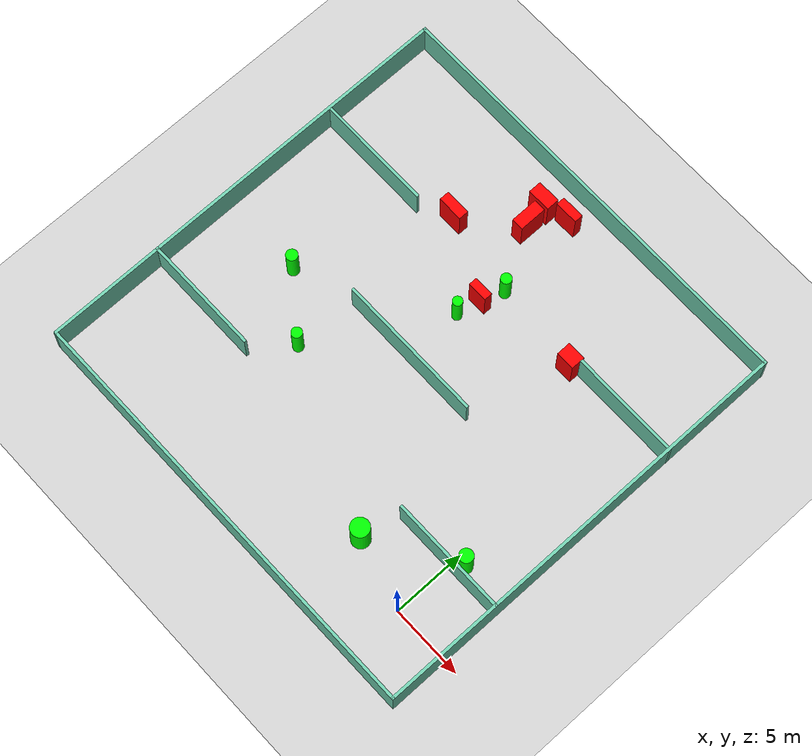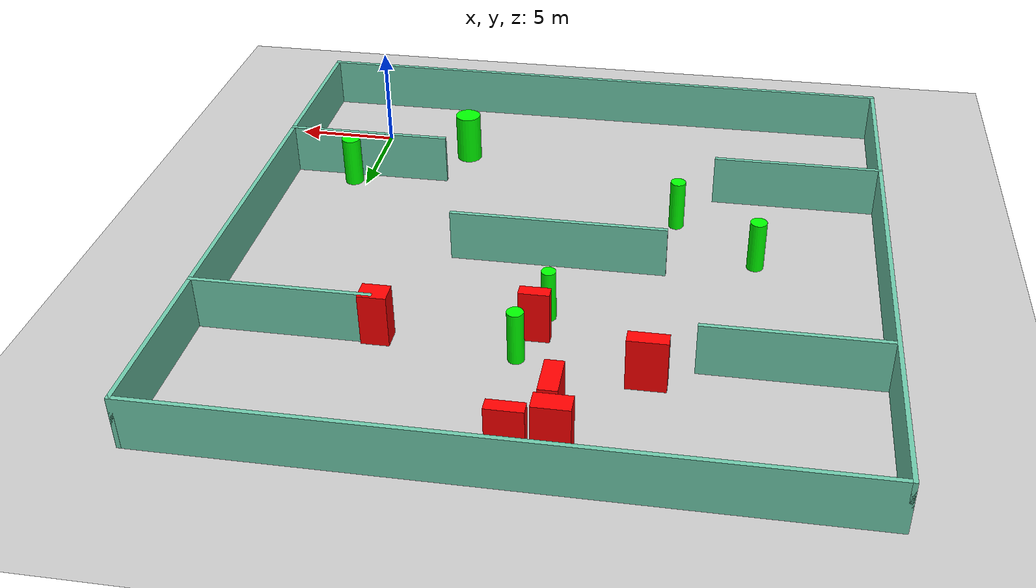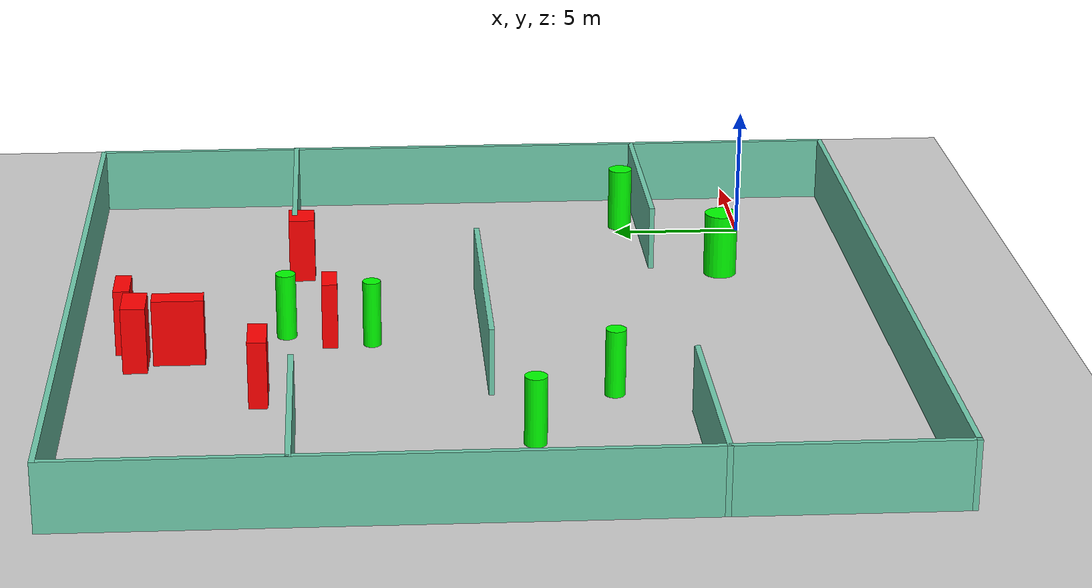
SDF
<sdf version="1.7">
 <world name="default">
  <light name="sun" type="directional">
   <pose>0 0 10 0 -0 0</pose>
   <diffuse>0.8 0.8 0.8 1</diffuse>
   <specular>0.2 0.2 0.2 1</specular>
   <attenuation>
    <range>1000</range>
    <constant>0.9</constant>
    <linear>0.01</linear>
    <quadratic>0.001</quadratic>
   </attenuation>
   <direction>-0.5 0.1 -0.9</direction>
   <spot><inner_angle>0</inner_angle><outer_angle>0</outer_angle><falloff>0</falloff></spot>
  </light>
  <model name="ground_plane">
   <static>1</static>
   <link name="link">
    <collision name="collision">
     <geometry><plane><normal>0 0 1</normal><size>100 100</size></plane></geometry>
     <surface>
      <contact><collide_bitmask>65535</collide_bitmask></contact>
      <friction><ode><mu>100</mu><mu2>50</mu2></ode></friction>
     </surface>
    </collision>
    <visual name="visual">
     <cast_shadows>0</cast_shadows>
     <geometry><plane><normal>0 0 1</normal><size>100 100</size></plane></geometry>
     <material>
      <script><uri>file://media/materials/scripts/gazebo.material</uri><name>Gazebo/Grey</name></script>
     </material>
    </visual>
   </link>
  </model>
  <gravity>0 0 -9.8</gravity>
  <magnetic_field>6e-06 2.3e-05 -4.2e-05</magnetic_field>
  <atmosphere type="adiabatic"/>
  <physics type="ode">
   <max_step_size>0.001</max_step_size>
   <real_time_factor>1</real_time_factor>
   <real_time_update_rate>1000</real_time_update_rate>
  </physics>
  <scene><ambient>0.4 0.4 0.4 1</ambient><background>0.7 0.7 0.7 1</background><shadows>1</shadows></scene>
  <spherical_coordinates>
   <surface_model>EARTH_WGS84</surface_model>
   <latitude_deg>0</latitude_deg>
   <longitude_deg>0</longitude_deg>
   <elevation>0</elevation>
   <heading_deg>0</heading_deg>
  </spherical_coordinates>
  <model name="my_base_walls">
   <link name="Wall_10">
    <collision name="Wall_10_Collision">
     <geometry><box><size>8.2 0.2 2.5</size></box></geometry>
     <pose>0 0 1.25 0 -0 0</pose>
    </collision>
    <visual name="Wall_10_Visual">
     <pose>0 0 1.25 0 -0 0</pose>
     <geometry><box><size>8.2 0.2 2.5</size></box></geometry>
     <material>
      <script><uri>file://media/materials/scripts/gazebo.material</uri><name>Gazebo/Grey</name></script>
      <ambient>0.435294 0.796078 0.67451 1</ambient>
     </material>
     <meta><layer>0</layer></meta>
    </visual>
    <pose>-11 -7 0 0 -0 0</pose>
   </link>
   <link name="Wall_12">
    <collision name="Wall_12_Collision">
     <geometry><box><size>8.2 0.2 2.5</size></box></geometry>
     <pose>0 0 1.25 0 -0 0</pose>
    </collision>
    <visual name="Wall_12_Visual">
     <pose>0 0 1.25 0 -0 0</pose>
     <geometry><box><size>8.2 0.2 2.5</size></box></geometry>
     <material>
      <script><uri>file://media/materials/scripts/gazebo.material</uri><name>Gazebo/Grey</name></script>
      <ambient>0.435294 0.796078 0.67451 1</ambient>
     </material>
     <meta><layer>0</layer></meta>
    </visual>
    <pose>-11 7 0 0 -0 0</pose>
   </link>
   <link name="Wall_14">
    <collision name="Wall_14_Collision">
     <geometry><box><size>8.2 0.2 2.5</size></box></geometry>
     <pose>0 0 1.25 0 -0 0</pose>
    </collision>
    <visual name="Wall_14_Visual">
     <pose>0 0 1.25 0 -0 0</pose>
     <geometry><box><size>8.2 0.2 2.5</size></box></geometry>
     <material>
      <script><uri>file://media/materials/scripts/gazebo.material</uri><name>Gazebo/Grey</name></script>
      <ambient>0.435294 0.796078 0.67451 1</ambient>
     </material>
     <meta><layer>0</layer></meta>
    </visual>
    <pose>11 7 0 0 -0 3.14159</pose>
   </link>
   <link name="Wall_16">
    <collision name="Wall_16_Collision">
     <geometry><box><size>10.2 0.2 2.5</size></box></geometry>
     <pose>0 0 1.25 0 -0 0</pose>
    </collision>
    <visual name="Wall_16_Visual">
     <pose>0 0 1.25 0 -0 0</pose>
     <geometry><box><size>10.2 0.2 2.5</size></box></geometry>
     <material>
      <script><uri>file://media/materials/scripts/gazebo.material</uri><name>Gazebo/Grey</name></script>
      <ambient>0.435294 0.796078 0.67451 1</ambient>
     </material>
     <meta><layer>0</layer></meta>
    </visual>
    <pose>0 0 0 0 -0 3.14159</pose>
   </link>
   <link name="Wall_2">
    <collision name="Wall_2_Collision">
     <geometry><box><size>30.2 0.2 2.5</size></box></geometry>
     <pose>0 0 1.25 0 -0 0</pose>
    </collision>
    <visual name="Wall_2_Visual">
     <pose>0 0 1.25 0 -0 0</pose>
     <geometry><box><size>30.2 0.2 2.5</size></box></geometry>
     <material>
      <script><uri>file://media/materials/scripts/gazebo.material</uri><name>Gazebo/Grey</name></script>
      <ambient>0.435294 0.796078 0.67451 1</ambient>
     </material>
     <meta><layer>0</layer></meta>
    </visual>
    <pose>0 -15 0 0 -0 3.14159</pose>
   </link>
   <link name="Wall_3">
    <collision name="Wall_3_Collision">
     <geometry><box><size>30.2 0.2 2.5</size></box></geometry>
     <pose>0 0 1.25 0 -0 0</pose>
    </collision>
    <visual name="Wall_3_Visual">
     <pose>0 0 1.25 0 -0 0</pose>
     <geometry><box><size>30.2 0.2 2.5</size></box></geometry>
     <material>
      <script><uri>file://media/materials/scripts/gazebo.material</uri><name>Gazebo/Grey</name></script>
      <ambient>0.435294 0.796078 0.67451 1</ambient>
     </material>
     <meta><layer>0</layer></meta>
    </visual>
    <pose>-15 0 0 0 -0 1.5708</pose>
   </link>
   <link name="Wall_4">
    <collision name="Wall_4_Collision">
     <geometry><box><size>30.2 0.2 2.5</size></box></geometry>
     <pose>0 0 1.25 0 -0 0</pose>
    </collision>
    <visual name="Wall_4_Visual">
     <pose>0 0 1.25 0 -0 0</pose>
     <geometry><box><size>30.2 0.2 2.5</size></box></geometry>
     <material>
      <script><uri>file://media/materials/scripts/gazebo.material</uri><name>Gazebo/Grey</name></script>
      <ambient>0.435294 0.796078 0.67451 1</ambient>
     </material>
     <meta><layer>0</layer></meta>
    </visual>
    <pose>0 15 0 0 -0 0</pose>
   </link>
   <link name="Wall_6">
    <collision name="Wall_6_Collision">
     <geometry><box><size>30.2 0.2 2.5</size></box></geometry>
     <pose>0 0 1.25 0 -0 0</pose>
    </collision>
    <visual name="Wall_6_Visual">
     <pose>0 0 1.25 0 -0 0</pose>
     <geometry><box><size>30.2 0.2 2.5</size></box></geometry>
     <material>
      <script><uri>file://media/materials/scripts/gazebo.material</uri><name>Gazebo/Grey</name></script>
      <ambient>0.435294 0.796078 0.67451 1</ambient>
     </material>
     <meta><layer>0</layer></meta>
    </visual>
    <pose>15 0 0 0 -0 1.5708</pose>
   </link>
   <link name="Wall_8">
    <collision name="Wall_8_Collision">
     <geometry><box><size>8.2 0.2 2.5</size></box></geometry>
     <pose>0 0 1.25 0 -0 0</pose>
    </collision>
    <visual name="Wall_8_Visual">
     <pose>0 0 1.25 0 -0 0</pose>
     <geometry><box><size>8.2 0.2 2.5</size></box></geometry>
     <material>
      <script><uri>file://media/materials/scripts/gazebo.material</uri><name>Gazebo/Grey</name></script>
      <ambient>0.435294 0.796078 0.67451 1</ambient>
     </material>
     <meta><layer>0</layer></meta>
    </visual>
    <pose>11 -7 0 0 -0 3.14159</pose>
   </link>
   <static>1</static>
   <pose>-11 11 0 0 -0 0</pose>
  </model>
  <model name="cylinder1">
   <static>1</static>
   <link name="link">
    <inertial>
     <mass>1</mass>
     <inertia><ixx>0.5</ixx><ixy>0</ixy><ixz>0</ixz><iyy>0.5</iyy><iyz>0</iyz><izz>1</izz></inertia>
    </inertial>
    <collision name="collision">
     <geometry><cylinder><radius>0.3669122926695403</radius><length>2.5</length></cylinder></geometry>
    </collision>
    <visual name="visual">
     <geometry><cylinder><radius>0.3669122926695403</radius><length>2.5</length></cylinder></geometry>
     <material>
      <ambient>0 1 0 1</ambient>
      <diffuse>0 1 0 1</diffuse>
      <specular>0.1 0.1 0.1 1</specular>
      <emissive>0 0 0 0</emissive>
     </material>
    </visual>
   </link>
   <pose>-16.257711564083912 6.641938324727027 1.25 0 0 0</pose>
  </model>
  <model name="cylinder2">
   <static>1</static>
   <link name="link">
    <inertial>
     <mass>1</mass>
     <inertia><ixx>0.5</ixx><ixy>0</ixy><ixz>0</ixz><iyy>0.5</iyy><iyz>0</iyz><izz>1</izz></inertia>
    </inertial>
    <collision name="collision">
     <geometry><cylinder><radius>0.3333828089339363</radius><length>2.5</length></cylinder></geometry>
    </collision>
    <visual name="visual">
     <geometry><cylinder><radius>0.3333828089339363</radius><length>2.5</length></cylinder></geometry>
     <material>
      <ambient>0 1 0 1</ambient>
      <diffuse>0 1 0 1</diffuse>
      <specular>0.1 0.1 0.1 1</specular>
      <emissive>0 0 0 0</emissive>
     </material>
    </visual>
   </link>
   <pose>-11.235240295281523 15.125264299502767 1.25 0 0 0</pose>
  </model>
  <model name="cylinder3">
   <static>1</static>
   <link name="link">
    <inertial>
     <mass>1</mass>
     <inertia><ixx>0.5</ixx><ixy>0</ixy><ixz>0</ixz><iyy>0.5</iyy><iyz>0</iyz><izz>1</izz></inertia>
    </inertial>
    <collision name="collision">
     <geometry><cylinder><radius>0.6379871866365263</radius><length>2.5</length></cylinder></geometry>
    </collision>
    <visual name="visual">
     <geometry><cylinder><radius>0.6379871866365263</radius><length>2.5</length></cylinder></geometry>
     <material>
      <ambient>0 1 0 1</ambient>
      <diffuse>0 1 0 1</diffuse>
      <specular>0.1 0.1 0.1 1</specular>
      <emissive>0 0 0 0</emissive>
     </material>
    </visual>
   </link>
   <pose>-4.719042668782318 1.3483789041998193 1.25 0 0 0</pose>
  </model>
  <model name="cylinder4">
   <static>1</static>
   <link name="link">
    <inertial>
     <mass>1</mass>
     <inertia><ixx>0.5</ixx><ixy>0</ixy><ixz>0</ixz><iyy>0.5</iyy><iyz>0</iyz><izz>1</izz></inertia>
    </inertial>
    <collision name="collision">
     <geometry><cylinder><radius>0.46742022056218635</radius><length>2.5</length></cylinder></geometry>
    </collision>
    <visual name="visual">
     <geometry><cylinder><radius>0.46742022056218635</radius><length>2.5</length></cylinder></geometry>
     <material>
      <ambient>0 1 0 1</ambient>
      <diffuse>0 1 0 1</diffuse>
      <specular>0.1 0.1 0.1 1</specular>
      <emissive>0 0 0 0</emissive>
     </material>
    </visual>
   </link>
   <pose>0.7026532823658442 4.763129269594064 1.25 0 0 0</pose>
  </model>
  <model name="cylinder5">
   <static>1</static>
   <link name="link">
    <inertial>
     <mass>1</mass>
     <inertia><ixx>0.5</ixx><ixy>0</ixy><ixz>0</ixz><iyy>0.5</iyy><iyz>0</iyz><izz>1</izz></inertia>
    </inertial>
    <collision name="collision">
     <geometry><cylinder><radius>0.37184221160649866</radius><length>2.5</length></cylinder></geometry>
    </collision>
    <visual name="visual">
     <geometry><cylinder><radius>0.37184221160649866</radius><length>2.5</length></cylinder></geometry>
     <material>
      <ambient>0 1 0 1</ambient>
      <diffuse>0 1 0 1</diffuse>
      <specular>0.1 0.1 0.1 1</specular>
      <emissive>0 0 0 0</emissive>
     </material>
    </visual>
   </link>
   <pose>-10.321325226010945 18.282124642738502 1.25 0 0 0</pose>
  </model>
  <model name="cylinder6">
   <static>1</static>
   <link name="link">
    <inertial>
     <mass>1</mass>
     <inertia><ixx>0.5</ixx><ixy>0</ixy><ixz>0</ixz><iyy>0.5</iyy><iyz>0</iyz><izz>1</izz></inertia>
    </inertial>
    <collision name="collision">
     <geometry><cylinder><radius>0.39726325421415487</radius><length>2.5</length></cylinder></geometry>
    </collision>
    <visual name="visual">
     <geometry><cylinder><radius>0.39726325421415487</radius><length>2.5</length></cylinder></geometry>
     <material>
      <ambient>0 1 0 1</ambient>
      <diffuse>0 1 0 1</diffuse>
      <specular>0.1 0.1 0.1 1</specular>
      <emissive>0 0 0 0</emissive>
     </material>
    </visual>
   </link>
   <pose>-20.205817912222585 9.73977721363126 1.25 0 0 0</pose>
  </model>
  <model name="box1">
   <static>1</static>
   <link name="link">
    <inertial>
     <mass>1</mass>
     <inertia><ixx>0.083</ixx><ixy>0</ixy><ixz>0</ixz><iyy>0.083</iyy><iyz>0</iyz><izz>0.083</izz></inertia>
    </inertial>
    <collision name="collision">
     <geometry><box><size>1.6159692428687416 0.5975071954725159 2.5</size></box></geometry>
    </collision>
    <visual name="visual">
     <geometry><box><size>1.6159692428687416 0.5975071954725159 2.5</size></box></geometry>
     <material>
      <ambient>1 0 0 1</ambient>
      <diffuse>1 0 0 1</diffuse>
      <specular>0.1 0.1 0.1 1</specular>
      <emissive>0 0 0 0</emissive>
     </material>
    </visual>
    <sensor name="my_contact" type="contact">
     <contact><collision>box_collision</collision><topic>__default_topic__</topic></contact>
    </sensor>
   </link>
   <pose>-10.995904057478771 24.21002718622314 1.25 0 0 0</pose>
  </model>
  <model name="box2">
   <static>1</static>
   <link name="link">
    <inertial>
     <mass>1</mass>
     <inertia><ixx>0.083</ixx><ixy>0</ixy><ixz>0</ixz><iyy>0.083</iyy><iyz>0</iyz><izz>0.083</izz></inertia>
    </inertial>
    <collision name="collision">
     <geometry><box><size>1.763515143436209 0.6841349188585217 2.5</size></box></geometry>
    </collision>
    <visual name="visual">
     <geometry><box><size>1.763515143436209 0.6841349188585217 2.5</size></box></geometry>
     <material>
      <ambient>1 0 0 1</ambient>
      <diffuse>1 0 0 1</diffuse>
      <specular>0.1 0.1 0.1 1</specular>
      <emissive>0 0 0 0</emissive>
     </material>
    </visual>
    <sensor name="my_contact" type="contact">
     <contact><collision>box_collision</collision><topic>__default_topic__</topic></contact>
    </sensor>
   </link>
   <pose>-15.96920309678617 19.200266252735194 1.25 0 0 0</pose>
  </model>
  <model name="box3">
   <static>1</static>
   <link name="link">
    <inertial>
     <mass>1</mass>
     <inertia><ixx>0.083</ixx><ixy>0</ixy><ixz>0</ixz><iyy>0.083</iyy><iyz>0</iyz><izz>0.083</izz></inertia>
    </inertial>
    <collision name="collision">
     <geometry><box><size>1.6110675036607818 0.8898920716363594 2.5</size></box></geometry>
    </collision>
    <visual name="visual">
     <geometry><box><size>1.6110675036607818 0.8898920716363594 2.5</size></box></geometry>
     <material>
      <ambient>1 0 0 1</ambient>
      <diffuse>1 0 0 1</diffuse>
      <specular>0.1 0.1 0.1 1</specular>
      <emissive>0 0 0 0</emissive>
     </material>
    </visual>
    <sensor name="my_contact" type="contact">
     <contact><collision>box_collision</collision><topic>__default_topic__</topic></contact>
    </sensor>
   </link>
   <pose>-12.728618624169044 23.6900896795599 1.25 0 0 0</pose>
  </model>
  <model name="box4">
   <static>1</static>
   <link name="link">
    <inertial>
     <mass>1</mass>
     <inertia><ixx>0.083</ixx><ixy>0</ixy><ixz>0</ixz><iyy>0.083</iyy><iyz>0</iyz><izz>0.083</izz></inertia>
    </inertial>
    <collision name="collision">
     <geometry><box><size>0.8270348786237287 1.8790549718217266 2.5</size></box></geometry>
    </collision>
    <visual name="visual">
     <geometry><box><size>0.8270348786237287 1.8790549718217266 2.5</size></box></geometry>
     <material>
      <ambient>1 0 0 1</ambient>
      <diffuse>1 0 0 1</diffuse>
      <specular>0.1 0.1 0.1 1</specular>
      <emissive>0 0 0 0</emissive>
     </material>
    </visual>
    <sensor name="my_contact" type="contact">
     <contact><collision>box_collision</collision><topic>__default_topic__</topic></contact>
    </sensor>
   </link>
   <pose>-12.445113774214276 22.1394915992402 1.25 0 0 0</pose>
  </model>
  <model name="box5">
   <static>1</static>
   <link name="link">
    <inertial>
     <mass>1</mass>
     <inertia><ixx>0.083</ixx><ixy>0</ixy><ixz>0</ixz><iyy>0.083</iyy><iyz>0</iyz><izz>0.083</izz></inertia>
    </inertial>
    <collision name="collision">
     <geometry><box><size>1.376395569468671 0.5783479337985994 2.5</size></box></geometry>
    </collision>
    <visual name="visual">
     <geometry><box><size>1.376395569468671 0.5783479337985994 2.5</size></box></geometry>
     <material>
      <ambient>1 0 0 1</ambient>
      <diffuse>1 0 0 1</diffuse>
      <specular>0.1 0.1 0.1 1</specular>
      <emissive>0 0 0 0</emissive>
     </material>
    </visual>
    <sensor name="my_contact" type="contact">
     <contact><collision>box_collision</collision><topic>__default_topic__</topic></contact>
    </sensor>
   </link>
   <pose>-10.873429393293739 16.674038771093795 1.25 0 0 0</pose>
  </model>
  <model name="box6">
   <static>1</static>
   <link name="link">
    <inertial>
     <mass>1</mass>
     <inertia><ixx>0.083</ixx><ixy>0</ixy><ixz>0</ixz><iyy>0.083</iyy><iyz>0</iyz><izz>0.083</izz></inertia>
    </inertial>
    <collision name="collision">
     <geometry><box><size>1.2763578025737554 0.993828490504047 2.5</size></box></geometry>
    </collision>
    <visual name="visual">
     <geometry><box><size>1.2763578025737554 0.993828490504047 2.5</size></box></geometry>
     <material>
      <ambient>1 0 0 1</ambient>
      <diffuse>1 0 0 1</diffuse>
      <specular>0.1 0.1 0.1 1</specular>
      <emissive>0 0 0 0</emissive>
     </material>
    </visual>
    <sensor name="my_contact" type="contact">
     <contact><collision>box_collision</collision><topic>__default_topic__</topic></contact>
    </sensor>
   </link>
   <pose>-4.113606438177662 17.73464502807287 1.25 0 0 0</pose>
  </model>
 </world>
</sdf>
